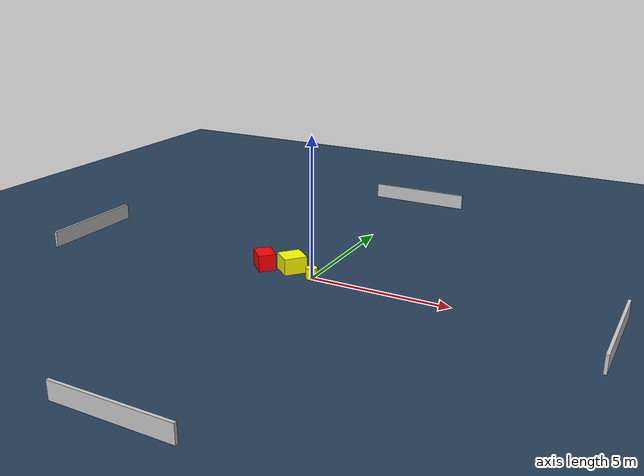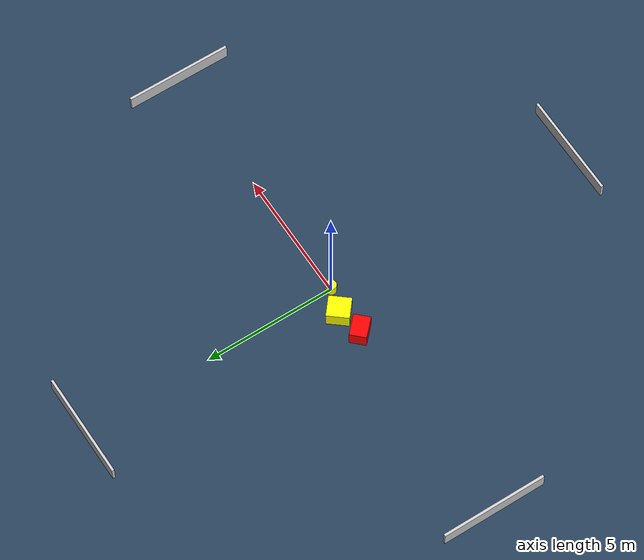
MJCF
<?xml version="1.0" ?>
<mujoco model="generated_environment">
  <option timestep="0.01" integrator="RK4" cone="elliptic"/>
  <default>
    <geom density="1"/>
  </default>
  <asset>
    <texture builtin="gradient" height="3072" name="skybox" rgb1="0.3 0.5 0.7" rgb2="0 0 0" type="skybox" width="512"/>
    <texture builtin="checker" height="300" name="groundplane" rgb1="0.2 0.3 0.4" rgb2="0.1 0.2 0.3" type="2d" width="300"/>
    <material name="groundplane" reflectance="0.2" texrepeat="5 5" texture="groundplane"/>
  </asset>
  <worldbody>
    <light dir="0 0 -1" directional="true" pos="0 0 1.5"/>
    <geom condim="3" friction="0.5 0.005 0.001" material="groundplane" name="floor" pos="0 0 0" size="0 0 0.05" type="plane"/>
    <body name="walls">
      <geom name="wall_1" condim="4" pos="-10.0 0.0 0.3" rgba="0.800000011920929 0.800000011920929 0.800000011920929 1.0" size="0.05 2.0 0.3" type="box"/>
      <geom name="wall_2" condim="4" pos="10.0 0.0 0.3" rgba="0.800000011920929 0.800000011920929 0.800000011920929 1.0" size="0.05 2.0 0.3" type="box"/>
      <geom name="wall_3" condim="4" pos="0.0 -10.0 0.3" rgba="0.800000011920929 0.800000011920929 0.800000011920929 1.0" size="2.0 0.05 0.3" type="box"/>
      <geom name="wall_4" condim="4" pos="0.0 10.0 0.3" rgba="0.800000011920929 0.800000011920929 0.800000011920929 1.0" size="2.0 0.05 0.3" type="box"/>
    </body>
    <body name="robot">
      <joint name="joint_x" type="slide" pos="0 0 0" axis="1 0 0"/>
      <joint name="joint_y" type="slide" pos="0 0 0" axis="0 1 0"/>
      <geom name="robot" type="cylinder" pos="0.0 0.0 0.2" size="0.2 0.2 0.0" mass="5.0" friction="1.0 0.005 0.0001" condim="4" rgba="1.0 1.0 0.0 1.0"/>
    </body>
    <body name="obstacle_1_movable">
      <geom name="obstacle_1_movable" condim="4" pos="-0.9507855589714578 0.29584462892280133 0.3" euler="0 0 230.3450882071604" friction="0.0 0.005 0.001" rgba="1.0 1.0 0.0 1.0" size="0.4162725858057476 0.3983612847163101 0.3" type="box" mass="0.1"/>
      <joint type="free"/>
    </body>
    <body name="obstacle_2_static">
      <geom name="obstacle_2_static" condim="4" pos="-1.9565532030197434 0.08867159545554203 0.3" euler="0 0 225.95305632039228" friction="0.0 0.005 0.001" rgba="1.0 0.0 0.0 1.0" size="0.3109522317703416 0.40779001884289945 0.3" type="box"/>
    </body>
  </worldbody>
  <actuator>
    <motor name="actuator_x" joint="joint_x" gear="1" ctrlrange="-1 1"/>
    <motor name="actuator_y" joint="joint_y" gear="1" ctrlrange="-1 1"/>
  </actuator>
</mujoco>
